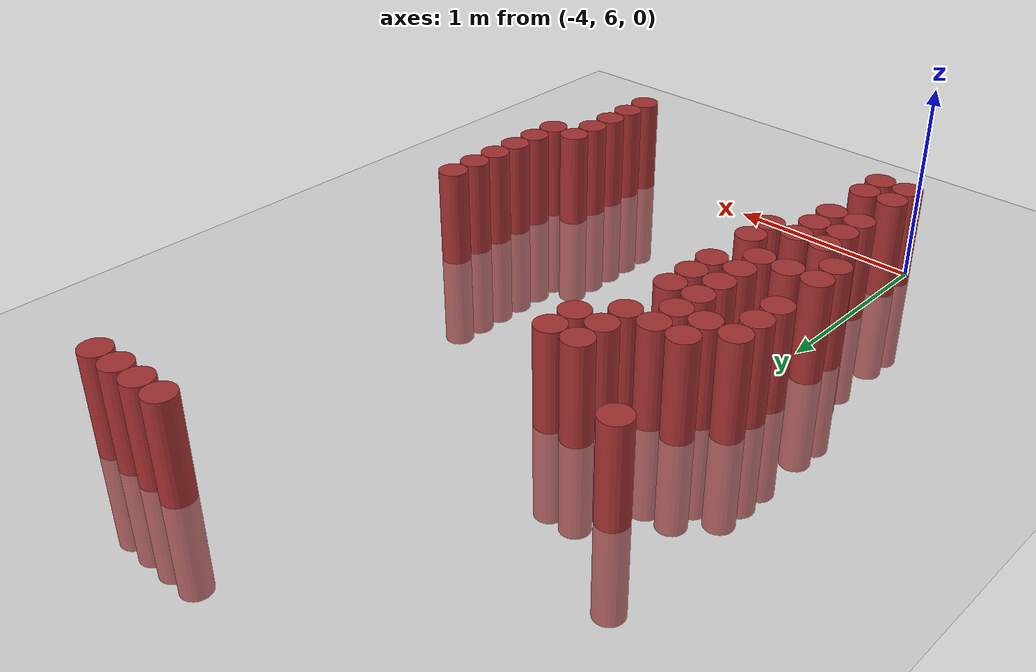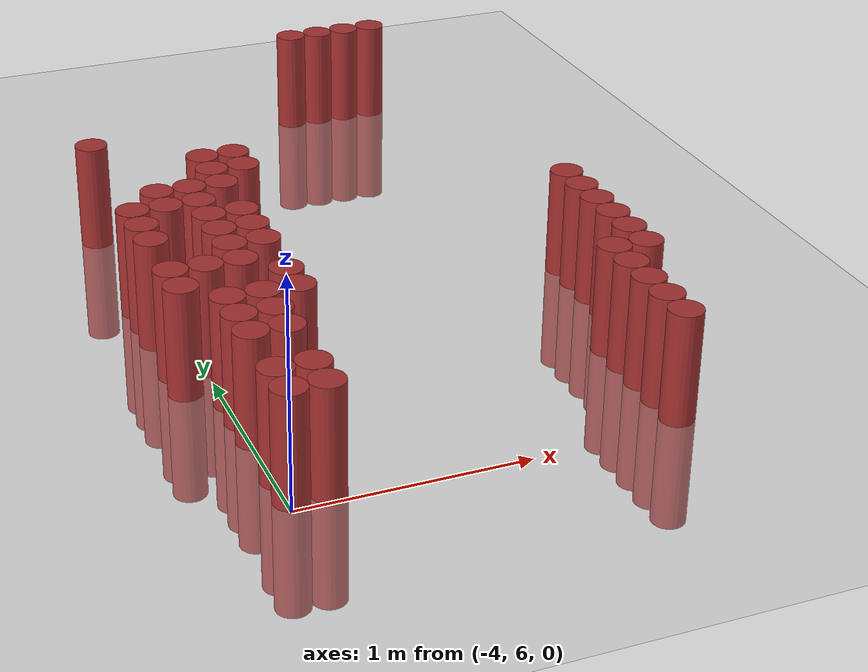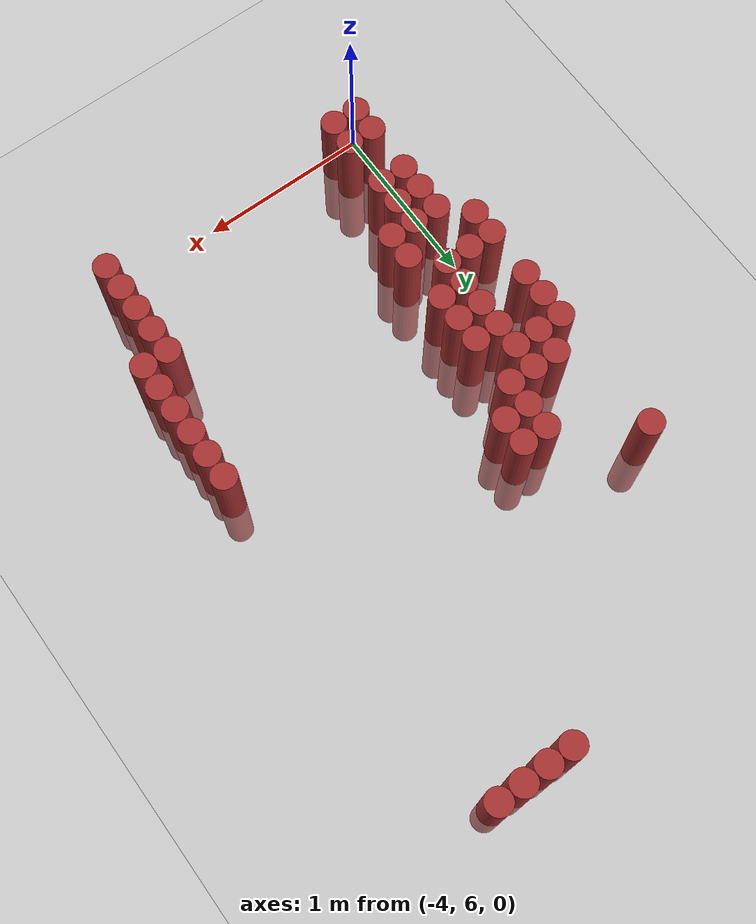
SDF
<sdf version="1.6">
 <world name="default">
  <model name="ground_plane">
   <static>1</static>
   <link name="link">
    <collision name="collision">
     <geometry><plane><normal>0 0 1</normal><size>100 100</size></plane></geometry>
     <surface><friction><ode><mu>100</mu><mu2>50</mu2></ode></friction></surface>
    </collision>
    <visual name="visual">
     <cast_shadows>0</cast_shadows>
     <geometry><plane><normal>0 0 1</normal><size>100 100</size></plane></geometry>
     <material>
      <script><uri>file://media/materials/scripts/gazebo.material</uri><name>Gazebo/Grey</name></script>
     </material>
    </visual>
   </link>
  </model>
  <model name="unit_cylinder_328">
   <static>1</static>
   <pose>-4.125000 6.975000 0.000000 0.000000 0.000000 0.000000</pose>
   <link name="link">
    <inertial>
     <mass>1</mass>
     <inertia><ixx>0.145833</ixx><ixy>0</ixy><ixz>0</ixz><iyy>0.145833</iyy><iyz>0</iyz><izz>0.125</izz></inertia>
    </inertial>
    <collision name="collision">
     <geometry><cylinder><radius>0.075000</radius><length>1</length></cylinder></geometry>
    </collision>
    <visual name="visual">
     <geometry><cylinder><radius>0.075000</radius><length>1</length></cylinder></geometry>
     <material>
      <ambient>0.648000 0.192000 0.192000 1</ambient>
      <diffuse>0.648000 0.192000 0.192000 1</diffuse>
     </material>
     <material>
      <script><name>Gazebo/Grey</name><uri>file://media/materials/scripts/gazebo.material</uri></script>
     </material>
    </visual>
   </link>
  </model>
  <model name="unit_cylinder_329">
   <static>1</static>
   <pose>-4.125000 7.125000 0.000000 0.000000 0.000000 0.000000</pose>
   <link name="link">
    <inertial>
     <mass>1</mass>
     <inertia><ixx>0.145833</ixx><ixy>0</ixy><ixz>0</ixz><iyy>0.145833</iyy><iyz>0</iyz><izz>0.125</izz></inertia>
    </inertial>
    <collision name="collision">
     <geometry><cylinder><radius>0.075000</radius><length>1</length></cylinder></geometry>
    </collision>
    <visual name="visual">
     <geometry><cylinder><radius>0.075000</radius><length>1</length></cylinder></geometry>
     <material>
      <ambient>0.648000 0.192000 0.192000 1</ambient>
      <diffuse>0.648000 0.192000 0.192000 1</diffuse>
     </material>
     <material>
      <script><name>Gazebo/Grey</name><uri>file://media/materials/scripts/gazebo.material</uri></script>
     </material>
    </visual>
   </link>
  </model>
  <model name="unit_cylinder_330">
   <static>1</static>
   <pose>-4.125000 7.425000 0.000000 0.000000 0.000000 0.000000</pose>
   <link name="link">
    <inertial>
     <mass>1</mass>
     <inertia><ixx>0.145833</ixx><ixy>0</ixy><ixz>0</ixz><iyy>0.145833</iyy><iyz>0</iyz><izz>0.125</izz></inertia>
    </inertial>
    <collision name="collision">
     <geometry><cylinder><radius>0.075000</radius><length>1</length></cylinder></geometry>
    </collision>
    <visual name="visual">
     <geometry><cylinder><radius>0.075000</radius><length>1</length></cylinder></geometry>
     <material>
      <ambient>0.648000 0.192000 0.192000 1</ambient>
      <diffuse>0.648000 0.192000 0.192000 1</diffuse>
     </material>
     <material>
      <script><name>Gazebo/Grey</name><uri>file://media/materials/scripts/gazebo.material</uri></script>
     </material>
    </visual>
   </link>
  </model>
  <model name="unit_cylinder_331">
   <static>1</static>
   <pose>-4.125000 7.575000 0.000000 0.000000 0.000000 0.000000</pose>
   <link name="link">
    <inertial>
     <mass>1</mass>
     <inertia><ixx>0.145833</ixx><ixy>0</ixy><ixz>0</ixz><iyy>0.145833</iyy><iyz>0</iyz><izz>0.125</izz></inertia>
    </inertial>
    <collision name="collision">
     <geometry><cylinder><radius>0.075000</radius><length>1</length></cylinder></geometry>
    </collision>
    <visual name="visual">
     <geometry><cylinder><radius>0.075000</radius><length>1</length></cylinder></geometry>
     <material>
      <ambient>0.648000 0.192000 0.192000 1</ambient>
      <diffuse>0.648000 0.192000 0.192000 1</diffuse>
     </material>
     <material>
      <script><name>Gazebo/Grey</name><uri>file://media/materials/scripts/gazebo.material</uri></script>
     </material>
    </visual>
   </link>
  </model>
  <model name="unit_cylinder_332">
   <static>1</static>
   <pose>-4.125000 7.725000 0.000000 0.000000 0.000000 0.000000</pose>
   <link name="link">
    <inertial>
     <mass>1</mass>
     <inertia><ixx>0.145833</ixx><ixy>0</ixy><ixz>0</ixz><iyy>0.145833</iyy><iyz>0</iyz><izz>0.125</izz></inertia>
    </inertial>
    <collision name="collision">
     <geometry><cylinder><radius>0.075000</radius><length>1</length></cylinder></geometry>
    </collision>
    <visual name="visual">
     <geometry><cylinder><radius>0.075000</radius><length>1</length></cylinder></geometry>
     <material>
      <ambient>0.648000 0.192000 0.192000 1</ambient>
      <diffuse>0.648000 0.192000 0.192000 1</diffuse>
     </material>
     <material>
      <script><name>Gazebo/Grey</name><uri>file://media/materials/scripts/gazebo.material</uri></script>
     </material>
    </visual>
   </link>
  </model>
  <model name="unit_cylinder_333">
   <static>1</static>
   <pose>-4.125000 8.475000 0.000000 0.000000 0.000000 0.000000</pose>
   <link name="link">
    <inertial>
     <mass>1</mass>
     <inertia><ixx>0.145833</ixx><ixy>0</ixy><ixz>0</ixz><iyy>0.145833</iyy><iyz>0</iyz><izz>0.125</izz></inertia>
    </inertial>
    <collision name="collision">
     <geometry><cylinder><radius>0.075000</radius><length>1</length></cylinder></geometry>
    </collision>
    <visual name="visual">
     <geometry><cylinder><radius>0.075000</radius><length>1</length></cylinder></geometry>
     <material>
      <ambient>0.648000 0.192000 0.192000 1</ambient>
      <diffuse>0.648000 0.192000 0.192000 1</diffuse>
     </material>
     <material>
      <script><name>Gazebo/Grey</name><uri>file://media/materials/scripts/gazebo.material</uri></script>
     </material>
    </visual>
   </link>
  </model>
  <model name="unit_cylinder_334">
   <static>1</static>
   <pose>-3.975000 6.075000 0.000000 0.000000 0.000000 0.000000</pose>
   <link name="link">
    <inertial>
     <mass>1</mass>
     <inertia><ixx>0.145833</ixx><ixy>0</ixy><ixz>0</ixz><iyy>0.145833</iyy><iyz>0</iyz><izz>0.125</izz></inertia>
    </inertial>
    <collision name="collision">
     <geometry><cylinder><radius>0.075000</radius><length>1</length></cylinder></geometry>
    </collision>
    <visual name="visual">
     <geometry><cylinder><radius>0.075000</radius><length>1</length></cylinder></geometry>
     <material>
      <ambient>0.648000 0.192000 0.192000 1</ambient>
      <diffuse>0.648000 0.192000 0.192000 1</diffuse>
     </material>
     <material>
      <script><name>Gazebo/Grey</name><uri>file://media/materials/scripts/gazebo.material</uri></script>
     </material>
    </visual>
   </link>
  </model>
  <model name="unit_cylinder_335">
   <static>1</static>
   <pose>-3.975000 6.225000 0.000000 0.000000 0.000000 0.000000</pose>
   <link name="link">
    <inertial>
     <mass>1</mass>
     <inertia><ixx>0.145833</ixx><ixy>0</ixy><ixz>0</ixz><iyy>0.145833</iyy><iyz>0</iyz><izz>0.125</izz></inertia>
    </inertial>
    <collision name="collision">
     <geometry><cylinder><radius>0.075000</radius><length>1</length></cylinder></geometry>
    </collision>
    <visual name="visual">
     <geometry><cylinder><radius>0.075000</radius><length>1</length></cylinder></geometry>
     <material>
      <ambient>0.648000 0.192000 0.192000 1</ambient>
      <diffuse>0.648000 0.192000 0.192000 1</diffuse>
     </material>
     <material>
      <script><name>Gazebo/Grey</name><uri>file://media/materials/scripts/gazebo.material</uri></script>
     </material>
    </visual>
   </link>
  </model>
  <model name="unit_cylinder_336">
   <static>1</static>
   <pose>-3.975000 6.525000 0.000000 0.000000 0.000000 0.000000</pose>
   <link name="link">
    <inertial>
     <mass>1</mass>
     <inertia><ixx>0.145833</ixx><ixy>0</ixy><ixz>0</ixz><iyy>0.145833</iyy><iyz>0</iyz><izz>0.125</izz></inertia>
    </inertial>
    <collision name="collision">
     <geometry><cylinder><radius>0.075000</radius><length>1</length></cylinder></geometry>
    </collision>
    <visual name="visual">
     <geometry><cylinder><radius>0.075000</radius><length>1</length></cylinder></geometry>
     <material>
      <ambient>0.648000 0.192000 0.192000 1</ambient>
      <diffuse>0.648000 0.192000 0.192000 1</diffuse>
     </material>
     <material>
      <script><name>Gazebo/Grey</name><uri>file://media/materials/scripts/gazebo.material</uri></script>
     </material>
    </visual>
   </link>
  </model>
  <model name="unit_cylinder_337">
   <static>1</static>
   <pose>-3.975000 6.675000 0.000000 0.000000 0.000000 0.000000</pose>
   <link name="link">
    <inertial>
     <mass>1</mass>
     <inertia><ixx>0.145833</ixx><ixy>0</ixy><ixz>0</ixz><iyy>0.145833</iyy><iyz>0</iyz><izz>0.125</izz></inertia>
    </inertial>
    <collision name="collision">
     <geometry><cylinder><radius>0.075000</radius><length>1</length></cylinder></geometry>
    </collision>
    <visual name="visual">
     <geometry><cylinder><radius>0.075000</radius><length>1</length></cylinder></geometry>
     <material>
      <ambient>0.648000 0.192000 0.192000 1</ambient>
      <diffuse>0.648000 0.192000 0.192000 1</diffuse>
     </material>
     <material>
      <script><name>Gazebo/Grey</name><uri>file://media/materials/scripts/gazebo.material</uri></script>
     </material>
    </visual>
   </link>
  </model>
  <model name="unit_cylinder_338">
   <static>1</static>
   <pose>-3.975000 6.825000 0.000000 0.000000 0.000000 0.000000</pose>
   <link name="link">
    <inertial>
     <mass>1</mass>
     <inertia><ixx>0.145833</ixx><ixy>0</ixy><ixz>0</ixz><iyy>0.145833</iyy><iyz>0</iyz><izz>0.125</izz></inertia>
    </inertial>
    <collision name="collision">
     <geometry><cylinder><radius>0.075000</radius><length>1</length></cylinder></geometry>
    </collision>
    <visual name="visual">
     <geometry><cylinder><radius>0.075000</radius><length>1</length></cylinder></geometry>
     <material>
      <ambient>0.648000 0.192000 0.192000 1</ambient>
      <diffuse>0.648000 0.192000 0.192000 1</diffuse>
     </material>
     <material>
      <script><name>Gazebo/Grey</name><uri>file://media/materials/scripts/gazebo.material</uri></script>
     </material>
    </visual>
   </link>
  </model>
  <model name="unit_cylinder_339">
   <static>1</static>
   <pose>-3.975000 7.125000 0.000000 0.000000 0.000000 0.000000</pose>
   <link name="link">
    <inertial>
     <mass>1</mass>
     <inertia><ixx>0.145833</ixx><ixy>0</ixy><ixz>0</ixz><iyy>0.145833</iyy><iyz>0</iyz><izz>0.125</izz></inertia>
    </inertial>
    <collision name="collision">
     <geometry><cylinder><radius>0.075000</radius><length>1</length></cylinder></geometry>
    </collision>
    <visual name="visual">
     <geometry><cylinder><radius>0.075000</radius><length>1</length></cylinder></geometry>
     <material>
      <ambient>0.648000 0.192000 0.192000 1</ambient>
      <diffuse>0.648000 0.192000 0.192000 1</diffuse>
     </material>
     <material>
      <script><name>Gazebo/Grey</name><uri>file://media/materials/scripts/gazebo.material</uri></script>
     </material>
    </visual>
   </link>
  </model>
  <model name="unit_cylinder_340">
   <static>1</static>
   <pose>-3.975000 7.725000 0.000000 0.000000 0.000000 0.000000</pose>
   <link name="link">
    <inertial>
     <mass>1</mass>
     <inertia><ixx>0.145833</ixx><ixy>0</ixy><ixz>0</ixz><iyy>0.145833</iyy><iyz>0</iyz><izz>0.125</izz></inertia>
    </inertial>
    <collision name="collision">
     <geometry><cylinder><radius>0.075000</radius><length>1</length></cylinder></geometry>
    </collision>
    <visual name="visual">
     <geometry><cylinder><radius>0.075000</radius><length>1</length></cylinder></geometry>
     <material>
      <ambient>0.648000 0.192000 0.192000 1</ambient>
      <diffuse>0.648000 0.192000 0.192000 1</diffuse>
     </material>
     <material>
      <script><name>Gazebo/Grey</name><uri>file://media/materials/scripts/gazebo.material</uri></script>
     </material>
    </visual>
   </link>
  </model>
  <model name="unit_cylinder_341">
   <static>1</static>
   <pose>-3.975000 7.875000 0.000000 0.000000 0.000000 0.000000</pose>
   <link name="link">
    <inertial>
     <mass>1</mass>
     <inertia><ixx>0.145833</ixx><ixy>0</ixy><ixz>0</ixz><iyy>0.145833</iyy><iyz>0</iyz><izz>0.125</izz></inertia>
    </inertial>
    <collision name="collision">
     <geometry><cylinder><radius>0.075000</radius><length>1</length></cylinder></geometry>
    </collision>
    <visual name="visual">
     <geometry><cylinder><radius>0.075000</radius><length>1</length></cylinder></geometry>
     <material>
      <ambient>0.648000 0.192000 0.192000 1</ambient>
      <diffuse>0.648000 0.192000 0.192000 1</diffuse>
     </material>
     <material>
      <script><name>Gazebo/Grey</name><uri>file://media/materials/scripts/gazebo.material</uri></script>
     </material>
    </visual>
   </link>
  </model>
  <model name="unit_cylinder_342">
   <static>1</static>
   <pose>-3.825000 6.075000 0.000000 0.000000 0.000000 0.000000</pose>
   <link name="link">
    <inertial>
     <mass>1</mass>
     <inertia><ixx>0.145833</ixx><ixy>0</ixy><ixz>0</ixz><iyy>0.145833</iyy><iyz>0</iyz><izz>0.125</izz></inertia>
    </inertial>
    <collision name="collision">
     <geometry><cylinder><radius>0.075000</radius><length>1</length></cylinder></geometry>
    </collision>
    <visual name="visual">
     <geometry><cylinder><radius>0.075000</radius><length>1</length></cylinder></geometry>
     <material>
      <ambient>0.648000 0.192000 0.192000 1</ambient>
      <diffuse>0.648000 0.192000 0.192000 1</diffuse>
     </material>
     <material>
      <script><name>Gazebo/Grey</name><uri>file://media/materials/scripts/gazebo.material</uri></script>
     </material>
    </visual>
   </link>
  </model>
  <model name="unit_cylinder_343">
   <static>1</static>
   <pose>-3.825000 6.225000 0.000000 0.000000 0.000000 0.000000</pose>
   <link name="link">
    <inertial>
     <mass>1</mass>
     <inertia><ixx>0.145833</ixx><ixy>0</ixy><ixz>0</ixz><iyy>0.145833</iyy><iyz>0</iyz><izz>0.125</izz></inertia>
    </inertial>
    <collision name="collision">
     <geometry><cylinder><radius>0.075000</radius><length>1</length></cylinder></geometry>
    </collision>
    <visual name="visual">
     <geometry><cylinder><radius>0.075000</radius><length>1</length></cylinder></geometry>
     <material>
      <ambient>0.648000 0.192000 0.192000 1</ambient>
      <diffuse>0.648000 0.192000 0.192000 1</diffuse>
     </material>
     <material>
      <script><name>Gazebo/Grey</name><uri>file://media/materials/scripts/gazebo.material</uri></script>
     </material>
    </visual>
   </link>
  </model>
  <model name="unit_cylinder_344">
   <static>1</static>
   <pose>-3.825000 6.525000 0.000000 0.000000 0.000000 0.000000</pose>
   <link name="link">
    <inertial>
     <mass>1</mass>
     <inertia><ixx>0.145833</ixx><ixy>0</ixy><ixz>0</ixz><iyy>0.145833</iyy><iyz>0</iyz><izz>0.125</izz></inertia>
    </inertial>
    <collision name="collision">
     <geometry><cylinder><radius>0.075000</radius><length>1</length></cylinder></geometry>
    </collision>
    <visual name="visual">
     <geometry><cylinder><radius>0.075000</radius><length>1</length></cylinder></geometry>
     <material>
      <ambient>0.648000 0.192000 0.192000 1</ambient>
      <diffuse>0.648000 0.192000 0.192000 1</diffuse>
     </material>
     <material>
      <script><name>Gazebo/Grey</name><uri>file://media/materials/scripts/gazebo.material</uri></script>
     </material>
    </visual>
   </link>
  </model>
  <model name="unit_cylinder_345">
   <static>1</static>
   <pose>-3.825000 6.675000 0.000000 0.000000 0.000000 0.000000</pose>
   <link name="link">
    <inertial>
     <mass>1</mass>
     <inertia><ixx>0.145833</ixx><ixy>0</ixy><ixz>0</ixz><iyy>0.145833</iyy><iyz>0</iyz><izz>0.125</izz></inertia>
    </inertial>
    <collision name="collision">
     <geometry><cylinder><radius>0.075000</radius><length>1</length></cylinder></geometry>
    </collision>
    <visual name="visual">
     <geometry><cylinder><radius>0.075000</radius><length>1</length></cylinder></geometry>
     <material>
      <ambient>0.648000 0.192000 0.192000 1</ambient>
      <diffuse>0.648000 0.192000 0.192000 1</diffuse>
     </material>
     <material>
      <script><name>Gazebo/Grey</name><uri>file://media/materials/scripts/gazebo.material</uri></script>
     </material>
    </visual>
   </link>
  </model>
  <model name="unit_cylinder_346">
   <static>1</static>
   <pose>-3.825000 6.825000 0.000000 0.000000 0.000000 0.000000</pose>
   <link name="link">
    <inertial>
     <mass>1</mass>
     <inertia><ixx>0.145833</ixx><ixy>0</ixy><ixz>0</ixz><iyy>0.145833</iyy><iyz>0</iyz><izz>0.125</izz></inertia>
    </inertial>
    <collision name="collision">
     <geometry><cylinder><radius>0.075000</radius><length>1</length></cylinder></geometry>
    </collision>
    <visual name="visual">
     <geometry><cylinder><radius>0.075000</radius><length>1</length></cylinder></geometry>
     <material>
      <ambient>0.648000 0.192000 0.192000 1</ambient>
      <diffuse>0.648000 0.192000 0.192000 1</diffuse>
     </material>
     <material>
      <script><name>Gazebo/Grey</name><uri>file://media/materials/scripts/gazebo.material</uri></script>
     </material>
    </visual>
   </link>
  </model>
  <model name="unit_cylinder_347">
   <static>1</static>
   <pose>-3.825000 7.125000 0.000000 0.000000 0.000000 0.000000</pose>
   <link name="link">
    <inertial>
     <mass>1</mass>
     <inertia><ixx>0.145833</ixx><ixy>0</ixy><ixz>0</ixz><iyy>0.145833</iyy><iyz>0</iyz><izz>0.125</izz></inertia>
    </inertial>
    <collision name="collision">
     <geometry><cylinder><radius>0.075000</radius><length>1</length></cylinder></geometry>
    </collision>
    <visual name="visual">
     <geometry><cylinder><radius>0.075000</radius><length>1</length></cylinder></geometry>
     <material>
      <ambient>0.648000 0.192000 0.192000 1</ambient>
      <diffuse>0.648000 0.192000 0.192000 1</diffuse>
     </material>
     <material>
      <script><name>Gazebo/Grey</name><uri>file://media/materials/scripts/gazebo.material</uri></script>
     </material>
    </visual>
   </link>
  </model>
  <model name="unit_cylinder_348">
   <static>1</static>
   <pose>-3.825000 7.275000 0.000000 0.000000 0.000000 0.000000</pose>
   <link name="link">
    <inertial>
     <mass>1</mass>
     <inertia><ixx>0.145833</ixx><ixy>0</ixy><ixz>0</ixz><iyy>0.145833</iyy><iyz>0</iyz><izz>0.125</izz></inertia>
    </inertial>
    <collision name="collision">
     <geometry><cylinder><radius>0.075000</radius><length>1</length></cylinder></geometry>
    </collision>
    <visual name="visual">
     <geometry><cylinder><radius>0.075000</radius><length>1</length></cylinder></geometry>
     <material>
      <ambient>0.648000 0.192000 0.192000 1</ambient>
      <diffuse>0.648000 0.192000 0.192000 1</diffuse>
     </material>
     <material>
      <script><name>Gazebo/Grey</name><uri>file://media/materials/scripts/gazebo.material</uri></script>
     </material>
    </visual>
   </link>
  </model>
  <model name="unit_cylinder_349">
   <static>1</static>
   <pose>-3.825000 7.425000 0.000000 0.000000 0.000000 0.000000</pose>
   <link name="link">
    <inertial>
     <mass>1</mass>
     <inertia><ixx>0.145833</ixx><ixy>0</ixy><ixz>0</ixz><iyy>0.145833</iyy><iyz>0</iyz><izz>0.125</izz></inertia>
    </inertial>
    <collision name="collision">
     <geometry><cylinder><radius>0.075000</radius><length>1</length></cylinder></geometry>
    </collision>
    <visual name="visual">
     <geometry><cylinder><radius>0.075000</radius><length>1</length></cylinder></geometry>
     <material>
      <ambient>0.648000 0.192000 0.192000 1</ambient>
      <diffuse>0.648000 0.192000 0.192000 1</diffuse>
     </material>
     <material>
      <script><name>Gazebo/Grey</name><uri>file://media/materials/scripts/gazebo.material</uri></script>
     </material>
    </visual>
   </link>
  </model>
  <model name="unit_cylinder_350">
   <static>1</static>
   <pose>-3.825000 7.575000 0.000000 0.000000 0.000000 0.000000</pose>
   <link name="link">
    <inertial>
     <mass>1</mass>
     <inertia><ixx>0.145833</ixx><ixy>0</ixy><ixz>0</ixz><iyy>0.145833</iyy><iyz>0</iyz><izz>0.125</izz></inertia>
    </inertial>
    <collision name="collision">
     <geometry><cylinder><radius>0.075000</radius><length>1</length></cylinder></geometry>
    </collision>
    <visual name="visual">
     <geometry><cylinder><radius>0.075000</radius><length>1</length></cylinder></geometry>
     <material>
      <ambient>0.648000 0.192000 0.192000 1</ambient>
      <diffuse>0.648000 0.192000 0.192000 1</diffuse>
     </material>
     <material>
      <script><name>Gazebo/Grey</name><uri>file://media/materials/scripts/gazebo.material</uri></script>
     </material>
    </visual>
   </link>
  </model>
  <model name="unit_cylinder_351">
   <static>1</static>
   <pose>-3.825000 7.725000 0.000000 0.000000 0.000000 0.000000</pose>
   <link name="link">
    <inertial>
     <mass>1</mass>
     <inertia><ixx>0.145833</ixx><ixy>0</ixy><ixz>0</ixz><iyy>0.145833</iyy><iyz>0</iyz><izz>0.125</izz></inertia>
    </inertial>
    <collision name="collision">
     <geometry><cylinder><radius>0.075000</radius><length>1</length></cylinder></geometry>
    </collision>
    <visual name="visual">
     <geometry><cylinder><radius>0.075000</radius><length>1</length></cylinder></geometry>
     <material>
      <ambient>0.648000 0.192000 0.192000 1</ambient>
      <diffuse>0.648000 0.192000 0.192000 1</diffuse>
     </material>
     <material>
      <script><name>Gazebo/Grey</name><uri>file://media/materials/scripts/gazebo.material</uri></script>
     </material>
    </visual>
   </link>
  </model>
  <model name="unit_cylinder_352">
   <static>1</static>
   <pose>-3.825000 7.875000 0.000000 0.000000 0.000000 0.000000</pose>
   <link name="link">
    <inertial>
     <mass>1</mass>
     <inertia><ixx>0.145833</ixx><ixy>0</ixy><ixz>0</ixz><iyy>0.145833</iyy><iyz>0</iyz><izz>0.125</izz></inertia>
    </inertial>
    <collision name="collision">
     <geometry><cylinder><radius>0.075000</radius><length>1</length></cylinder></geometry>
    </collision>
    <visual name="visual">
     <geometry><cylinder><radius>0.075000</radius><length>1</length></cylinder></geometry>
     <material>
      <ambient>0.648000 0.192000 0.192000 1</ambient>
      <diffuse>0.648000 0.192000 0.192000 1</diffuse>
     </material>
     <material>
      <script><name>Gazebo/Grey</name><uri>file://media/materials/scripts/gazebo.material</uri></script>
     </material>
    </visual>
   </link>
  </model>
  <model name="unit_cylinder_353">
   <static>1</static>
   <pose>-3.675000 6.825000 0.000000 0.000000 0.000000 0.000000</pose>
   <link name="link">
    <inertial>
     <mass>1</mass>
     <inertia><ixx>0.145833</ixx><ixy>0</ixy><ixz>0</ixz><iyy>0.145833</iyy><iyz>0</iyz><izz>0.125</izz></inertia>
    </inertial>
    <collision name="collision">
     <geometry><cylinder><radius>0.075000</radius><length>1</length></cylinder></geometry>
    </collision>
    <visual name="visual">
     <geometry><cylinder><radius>0.075000</radius><length>1</length></cylinder></geometry>
     <material>
      <ambient>0.648000 0.192000 0.192000 1</ambient>
      <diffuse>0.648000 0.192000 0.192000 1</diffuse>
     </material>
     <material>
      <script><name>Gazebo/Grey</name><uri>file://media/materials/scripts/gazebo.material</uri></script>
     </material>
    </visual>
   </link>
  </model>
  <model name="unit_cylinder_354">
   <static>1</static>
   <pose>-3.675000 6.975000 0.000000 0.000000 0.000000 0.000000</pose>
   <link name="link">
    <inertial>
     <mass>1</mass>
     <inertia><ixx>0.145833</ixx><ixy>0</ixy><ixz>0</ixz><iyy>0.145833</iyy><iyz>0</iyz><izz>0.125</izz></inertia>
    </inertial>
    <collision name="collision">
     <geometry><cylinder><radius>0.075000</radius><length>1</length></cylinder></geometry>
    </collision>
    <visual name="visual">
     <geometry><cylinder><radius>0.075000</radius><length>1</length></cylinder></geometry>
     <material>
      <ambient>0.648000 0.192000 0.192000 1</ambient>
      <diffuse>0.648000 0.192000 0.192000 1</diffuse>
     </material>
     <material>
      <script><name>Gazebo/Grey</name><uri>file://media/materials/scripts/gazebo.material</uri></script>
     </material>
    </visual>
   </link>
  </model>
  <model name="unit_cylinder_355">
   <static>1</static>
   <pose>-3.675000 7.275000 0.000000 0.000000 0.000000 0.000000</pose>
   <link name="link">
    <inertial>
     <mass>1</mass>
     <inertia><ixx>0.145833</ixx><ixy>0</ixy><ixz>0</ixz><iyy>0.145833</iyy><iyz>0</iyz><izz>0.125</izz></inertia>
    </inertial>
    <collision name="collision">
     <geometry><cylinder><radius>0.075000</radius><length>1</length></cylinder></geometry>
    </collision>
    <visual name="visual">
     <geometry><cylinder><radius>0.075000</radius><length>1</length></cylinder></geometry>
     <material>
      <ambient>0.648000 0.192000 0.192000 1</ambient>
      <diffuse>0.648000 0.192000 0.192000 1</diffuse>
     </material>
     <material>
      <script><name>Gazebo/Grey</name><uri>file://media/materials/scripts/gazebo.material</uri></script>
     </material>
    </visual>
   </link>
  </model>
  <model name="unit_cylinder_356">
   <static>1</static>
   <pose>-3.675000 7.425000 0.000000 0.000000 0.000000 0.000000</pose>
   <link name="link">
    <inertial>
     <mass>1</mass>
     <inertia><ixx>0.145833</ixx><ixy>0</ixy><ixz>0</ixz><iyy>0.145833</iyy><iyz>0</iyz><izz>0.125</izz></inertia>
    </inertial>
    <collision name="collision">
     <geometry><cylinder><radius>0.075000</radius><length>1</length></cylinder></geometry>
    </collision>
    <visual name="visual">
     <geometry><cylinder><radius>0.075000</radius><length>1</length></cylinder></geometry>
     <material>
      <ambient>0.648000 0.192000 0.192000 1</ambient>
      <diffuse>0.648000 0.192000 0.192000 1</diffuse>
     </material>
     <material>
      <script><name>Gazebo/Grey</name><uri>file://media/materials/scripts/gazebo.material</uri></script>
     </material>
    </visual>
   </link>
  </model>
  <model name="unit_cylinder_357">
   <static>1</static>
   <pose>-3.675000 7.575000 0.000000 0.000000 0.000000 0.000000</pose>
   <link name="link">
    <inertial>
     <mass>1</mass>
     <inertia><ixx>0.145833</ixx><ixy>0</ixy><ixz>0</ixz><iyy>0.145833</iyy><iyz>0</iyz><izz>0.125</izz></inertia>
    </inertial>
    <collision name="collision">
     <geometry><cylinder><radius>0.075000</radius><length>1</length></cylinder></geometry>
    </collision>
    <visual name="visual">
     <geometry><cylinder><radius>0.075000</radius><length>1</length></cylinder></geometry>
     <material>
      <ambient>0.648000 0.192000 0.192000 1</ambient>
      <diffuse>0.648000 0.192000 0.192000 1</diffuse>
     </material>
     <material>
      <script><name>Gazebo/Grey</name><uri>file://media/materials/scripts/gazebo.material</uri></script>
     </material>
    </visual>
   </link>
  </model>
  <model name="unit_cylinder_358">
   <static>1</static>
   <pose>-3.675000 7.875000 0.000000 0.000000 0.000000 0.000000</pose>
   <link name="link">
    <inertial>
     <mass>1</mass>
     <inertia><ixx>0.145833</ixx><ixy>0</ixy><ixz>0</ixz><iyy>0.145833</iyy><iyz>0</iyz><izz>0.125</izz></inertia>
    </inertial>
    <collision name="collision">
     <geometry><cylinder><radius>0.075000</radius><length>1</length></cylinder></geometry>
    </collision>
    <visual name="visual">
     <geometry><cylinder><radius>0.075000</radius><length>1</length></cylinder></geometry>
     <material>
      <ambient>0.648000 0.192000 0.192000 1</ambient>
      <diffuse>0.648000 0.192000 0.192000 1</diffuse>
     </material>
     <material>
      <script><name>Gazebo/Grey</name><uri>file://media/materials/scripts/gazebo.material</uri></script>
     </material>
    </visual>
   </link>
  </model>
  <model name="unit_cylinder_359">
   <static>1</static>
   <pose>-3.675000 8.025000 0.000000 0.000000 0.000000 0.000000</pose>
   <link name="link">
    <inertial>
     <mass>1</mass>
     <inertia><ixx>0.145833</ixx><ixy>0</ixy><ixz>0</ixz><iyy>0.145833</iyy><iyz>0</iyz><izz>0.125</izz></inertia>
    </inertial>
    <collision name="collision">
     <geometry><cylinder><radius>0.075000</radius><length>1</length></cylinder></geometry>
    </collision>
    <visual name="visual">
     <geometry><cylinder><radius>0.075000</radius><length>1</length></cylinder></geometry>
     <material>
      <ambient>0.648000 0.192000 0.192000 1</ambient>
      <diffuse>0.648000 0.192000 0.192000 1</diffuse>
     </material>
     <material>
      <script><name>Gazebo/Grey</name><uri>file://media/materials/scripts/gazebo.material</uri></script>
     </material>
    </visual>
   </link>
  </model>
  <model name="unit_cylinder_360">
   <static>1</static>
   <pose>-3.675000 8.175000 0.000000 0.000000 0.000000 0.000000</pose>
   <link name="link">
    <inertial>
     <mass>1</mass>
     <inertia><ixx>0.145833</ixx><ixy>0</ixy><ixz>0</ixz><iyy>0.145833</iyy><iyz>0</iyz><izz>0.125</izz></inertia>
    </inertial>
    <collision name="collision">
     <geometry><cylinder><radius>0.075000</radius><length>1</length></cylinder></geometry>
    </collision>
    <visual name="visual">
     <geometry><cylinder><radius>0.075000</radius><length>1</length></cylinder></geometry>
     <material>
      <ambient>0.648000 0.192000 0.192000 1</ambient>
      <diffuse>0.648000 0.192000 0.192000 1</diffuse>
     </material>
     <material>
      <script><name>Gazebo/Grey</name><uri>file://media/materials/scripts/gazebo.material</uri></script>
     </material>
    </visual>
   </link>
  </model>
  <model name="unit_cylinder_361">
   <static>1</static>
   <pose>-3.525000 8.025000 0.000000 0.000000 0.000000 0.000000</pose>
   <link name="link">
    <inertial>
     <mass>1</mass>
     <inertia><ixx>0.145833</ixx><ixy>0</ixy><ixz>0</ixz><iyy>0.145833</iyy><iyz>0</iyz><izz>0.125</izz></inertia>
    </inertial>
    <collision name="collision">
     <geometry><cylinder><radius>0.075000</radius><length>1</length></cylinder></geometry>
    </collision>
    <visual name="visual">
     <geometry><cylinder><radius>0.075000</radius><length>1</length></cylinder></geometry>
     <material>
      <ambient>0.648000 0.192000 0.192000 1</ambient>
      <diffuse>0.648000 0.192000 0.192000 1</diffuse>
     </material>
     <material>
      <script><name>Gazebo/Grey</name><uri>file://media/materials/scripts/gazebo.material</uri></script>
     </material>
    </visual>
   </link>
  </model>
  <model name="unit_cylinder_362">
   <static>1</static>
   <pose>-3.525000 8.175000 0.000000 0.000000 0.000000 0.000000</pose>
   <link name="link">
    <inertial>
     <mass>1</mass>
     <inertia><ixx>0.145833</ixx><ixy>0</ixy><ixz>0</ixz><iyy>0.145833</iyy><iyz>0</iyz><izz>0.125</izz></inertia>
    </inertial>
    <collision name="collision">
     <geometry><cylinder><radius>0.075000</radius><length>1</length></cylinder></geometry>
    </collision>
    <visual name="visual">
     <geometry><cylinder><radius>0.075000</radius><length>1</length></cylinder></geometry>
     <material>
      <ambient>0.648000 0.192000 0.192000 1</ambient>
      <diffuse>0.648000 0.192000 0.192000 1</diffuse>
     </material>
     <material>
      <script><name>Gazebo/Grey</name><uri>file://media/materials/scripts/gazebo.material</uri></script>
     </material>
    </visual>
   </link>
  </model>
  <model name="unit_cylinder_363">
   <static>1</static>
   <pose>-2.775000 9.525000 0.000000 0.000000 0.000000 0.000000</pose>
   <link name="link">
    <inertial>
     <mass>1</mass>
     <inertia><ixx>0.145833</ixx><ixy>0</ixy><ixz>0</ixz><iyy>0.145833</iyy><iyz>0</iyz><izz>0.125</izz></inertia>
    </inertial>
    <collision name="collision">
     <geometry><cylinder><radius>0.075000</radius><length>1</length></cylinder></geometry>
    </collision>
    <visual name="visual">
     <geometry><cylinder><radius>0.075000</radius><length>1</length></cylinder></geometry>
     <material>
      <ambient>0.648000 0.192000 0.192000 1</ambient>
      <diffuse>0.648000 0.192000 0.192000 1</diffuse>
     </material>
     <material>
      <script><name>Gazebo/Grey</name><uri>file://media/materials/scripts/gazebo.material</uri></script>
     </material>
    </visual>
   </link>
  </model>
  <model name="unit_cylinder_364">
   <static>1</static>
   <pose>-2.625000 9.525000 0.000000 0.000000 0.000000 0.000000</pose>
   <link name="link">
    <inertial>
     <mass>1</mass>
     <inertia><ixx>0.145833</ixx><ixy>0</ixy><ixz>0</ixz><iyy>0.145833</iyy><iyz>0</iyz><izz>0.125</izz></inertia>
    </inertial>
    <collision name="collision">
     <geometry><cylinder><radius>0.075000</radius><length>1</length></cylinder></geometry>
    </collision>
    <visual name="visual">
     <geometry><cylinder><radius>0.075000</radius><length>1</length></cylinder></geometry>
     <material>
      <ambient>0.648000 0.192000 0.192000 1</ambient>
      <diffuse>0.648000 0.192000 0.192000 1</diffuse>
     </material>
     <material>
      <script><name>Gazebo/Grey</name><uri>file://media/materials/scripts/gazebo.material</uri></script>
     </material>
    </visual>
   </link>
  </model>
  <model name="unit_cylinder_368">
   <static>1</static>
   <pose>-2.475000 9.525000 0.000000 0.000000 0.000000 0.000000</pose>
   <link name="link">
    <inertial>
     <mass>1</mass>
     <inertia><ixx>0.145833</ixx><ixy>0</ixy><ixz>0</ixz><iyy>0.145833</iyy><iyz>0</iyz><izz>0.125</izz></inertia>
    </inertial>
    <collision name="collision">
     <geometry><cylinder><radius>0.075000</radius><length>1</length></cylinder></geometry>
    </collision>
    <visual name="visual">
     <geometry><cylinder><radius>0.075000</radius><length>1</length></cylinder></geometry>
     <material>
      <ambient>0.648000 0.192000 0.192000 1</ambient>
      <diffuse>0.648000 0.192000 0.192000 1</diffuse>
     </material>
     <material>
      <script><name>Gazebo/Grey</name><uri>file://media/materials/scripts/gazebo.material</uri></script>
     </material>
    </visual>
   </link>
  </model>
  <model name="unit_cylinder_374">
   <static>1</static>
   <pose>-2.325000 6.075000 0.000000 0.000000 0.000000 0.000000</pose>
   <link name="link">
    <inertial>
     <mass>1</mass>
     <inertia><ixx>0.145833</ixx><ixy>0</ixy><ixz>0</ixz><iyy>0.145833</iyy><iyz>0</iyz><izz>0.125</izz></inertia>
    </inertial>
    <collision name="collision">
     <geometry><cylinder><radius>0.075000</radius><length>1</length></cylinder></geometry>
    </collision>
    <visual name="visual">
     <geometry><cylinder><radius>0.075000</radius><length>1</length></cylinder></geometry>
     <material>
      <ambient>0.648000 0.192000 0.192000 1</ambient>
      <diffuse>0.648000 0.192000 0.192000 1</diffuse>
     </material>
     <material>
      <script><name>Gazebo/Grey</name><uri>file://media/materials/scripts/gazebo.material</uri></script>
     </material>
    </visual>
   </link>
  </model>
  <model name="unit_cylinder_375">
   <static>1</static>
   <pose>-2.325000 6.225000 0.000000 0.000000 0.000000 0.000000</pose>
   <link name="link">
    <inertial>
     <mass>1</mass>
     <inertia><ixx>0.145833</ixx><ixy>0</ixy><ixz>0</ixz><iyy>0.145833</iyy><iyz>0</iyz><izz>0.125</izz></inertia>
    </inertial>
    <collision name="collision">
     <geometry><cylinder><radius>0.075000</radius><length>1</length></cylinder></geometry>
    </collision>
    <visual name="visual">
     <geometry><cylinder><radius>0.075000</radius><length>1</length></cylinder></geometry>
     <material>
      <ambient>0.648000 0.192000 0.192000 1</ambient>
      <diffuse>0.648000 0.192000 0.192000 1</diffuse>
     </material>
     <material>
      <script><name>Gazebo/Grey</name><uri>file://media/materials/scripts/gazebo.material</uri></script>
     </material>
    </visual>
   </link>
  </model>
  <model name="unit_cylinder_376">
   <static>1</static>
   <pose>-2.325000 6.375000 0.000000 0.000000 0.000000 0.000000</pose>
   <link name="link">
    <inertial>
     <mass>1</mass>
     <inertia><ixx>0.145833</ixx><ixy>0</ixy><ixz>0</ixz><iyy>0.145833</iyy><iyz>0</iyz><izz>0.125</izz></inertia>
    </inertial>
    <collision name="collision">
     <geometry><cylinder><radius>0.075000</radius><length>1</length></cylinder></geometry>
    </collision>
    <visual name="visual">
     <geometry><cylinder><radius>0.075000</radius><length>1</length></cylinder></geometry>
     <material>
      <ambient>0.648000 0.192000 0.192000 1</ambient>
      <diffuse>0.648000 0.192000 0.192000 1</diffuse>
     </material>
     <material>
      <script><name>Gazebo/Grey</name><uri>file://media/materials/scripts/gazebo.material</uri></script>
     </material>
    </visual>
   </link>
  </model>
  <model name="unit_cylinder_377">
   <static>1</static>
   <pose>-2.325000 6.525000 0.000000 0.000000 0.000000 0.000000</pose>
   <link name="link">
    <inertial>
     <mass>1</mass>
     <inertia><ixx>0.145833</ixx><ixy>0</ixy><ixz>0</ixz><iyy>0.145833</iyy><iyz>0</iyz><izz>0.125</izz></inertia>
    </inertial>
    <collision name="collision">
     <geometry><cylinder><radius>0.075000</radius><length>1</length></cylinder></geometry>
    </collision>
    <visual name="visual">
     <geometry><cylinder><radius>0.075000</radius><length>1</length></cylinder></geometry>
     <material>
      <ambient>0.648000 0.192000 0.192000 1</ambient>
      <diffuse>0.648000 0.192000 0.192000 1</diffuse>
     </material>
     <material>
      <script><name>Gazebo/Grey</name><uri>file://media/materials/scripts/gazebo.material</uri></script>
     </material>
    </visual>
   </link>
  </model>
  <model name="unit_cylinder_378">
   <static>1</static>
   <pose>-2.325000 6.675000 0.000000 0.000000 0.000000 0.000000</pose>
   <link name="link">
    <inertial>
     <mass>1</mass>
     <inertia><ixx>0.145833</ixx><ixy>0</ixy><ixz>0</ixz><iyy>0.145833</iyy><iyz>0</iyz><izz>0.125</izz></inertia>
    </inertial>
    <collision name="collision">
     <geometry><cylinder><radius>0.075000</radius><length>1</length></cylinder></geometry>
    </collision>
    <visual name="visual">
     <geometry><cylinder><radius>0.075000</radius><length>1</length></cylinder></geometry>
     <material>
      <ambient>0.648000 0.192000 0.192000 1</ambient>
      <diffuse>0.648000 0.192000 0.192000 1</diffuse>
     </material>
     <material>
      <script><name>Gazebo/Grey</name><uri>file://media/materials/scripts/gazebo.material</uri></script>
     </material>
    </visual>
   </link>
  </model>
  <model name="unit_cylinder_379">
   <static>1</static>
   <pose>-2.325000 9.525000 0.000000 0.000000 0.000000 0.000000</pose>
   <link name="link">
    <inertial>
     <mass>1</mass>
     <inertia><ixx>0.145833</ixx><ixy>0</ixy><ixz>0</ixz><iyy>0.145833</iyy><iyz>0</iyz><izz>0.125</izz></inertia>
    </inertial>
    <collision name="collision">
     <geometry><cylinder><radius>0.075000</radius><length>1</length></cylinder></geometry>
    </collision>
    <visual name="visual">
     <geometry><cylinder><radius>0.075000</radius><length>1</length></cylinder></geometry>
     <material>
      <ambient>0.648000 0.192000 0.192000 1</ambient>
      <diffuse>0.648000 0.192000 0.192000 1</diffuse>
     </material>
     <material>
      <script><name>Gazebo/Grey</name><uri>file://media/materials/scripts/gazebo.material</uri></script>
     </material>
    </visual>
   </link>
  </model>
  <model name="unit_cylinder_381">
   <static>1</static>
   <pose>-2.175000 6.675000 0.000000 0.000000 0.000000 0.000000</pose>
   <link name="link">
    <inertial>
     <mass>1</mass>
     <inertia><ixx>0.145833</ixx><ixy>0</ixy><ixz>0</ixz><iyy>0.145833</iyy><iyz>0</iyz><izz>0.125</izz></inertia>
    </inertial>
    <collision name="collision">
     <geometry><cylinder><radius>0.075000</radius><length>1</length></cylinder></geometry>
    </collision>
    <visual name="visual">
     <geometry><cylinder><radius>0.075000</radius><length>1</length></cylinder></geometry>
     <material>
      <ambient>0.648000 0.192000 0.192000 1</ambient>
      <diffuse>0.648000 0.192000 0.192000 1</diffuse>
     </material>
     <material>
      <script><name>Gazebo/Grey</name><uri>file://media/materials/scripts/gazebo.material</uri></script>
     </material>
    </visual>
   </link>
  </model>
  <model name="unit_cylinder_382">
   <static>1</static>
   <pose>-2.175000 6.825000 0.000000 0.000000 0.000000 0.000000</pose>
   <link name="link">
    <inertial>
     <mass>1</mass>
     <inertia><ixx>0.145833</ixx><ixy>0</ixy><ixz>0</ixz><iyy>0.145833</iyy><iyz>0</iyz><izz>0.125</izz></inertia>
    </inertial>
    <collision name="collision">
     <geometry><cylinder><radius>0.075000</radius><length>1</length></cylinder></geometry>
    </collision>
    <visual name="visual">
     <geometry><cylinder><radius>0.075000</radius><length>1</length></cylinder></geometry>
     <material>
      <ambient>0.648000 0.192000 0.192000 1</ambient>
      <diffuse>0.648000 0.192000 0.192000 1</diffuse>
     </material>
     <material>
      <script><name>Gazebo/Grey</name><uri>file://media/materials/scripts/gazebo.material</uri></script>
     </material>
    </visual>
   </link>
  </model>
  <model name="unit_cylinder_383">
   <static>1</static>
   <pose>-2.175000 6.975000 0.000000 0.000000 0.000000 0.000000</pose>
   <link name="link">
    <inertial>
     <mass>1</mass>
     <inertia><ixx>0.145833</ixx><ixy>0</ixy><ixz>0</ixz><iyy>0.145833</iyy><iyz>0</iyz><izz>0.125</izz></inertia>
    </inertial>
    <collision name="collision">
     <geometry><cylinder><radius>0.075000</radius><length>1</length></cylinder></geometry>
    </collision>
    <visual name="visual">
     <geometry><cylinder><radius>0.075000</radius><length>1</length></cylinder></geometry>
     <material>
      <ambient>0.648000 0.192000 0.192000 1</ambient>
      <diffuse>0.648000 0.192000 0.192000 1</diffuse>
     </material>
     <material>
      <script><name>Gazebo/Grey</name><uri>file://media/materials/scripts/gazebo.material</uri></script>
     </material>
    </visual>
   </link>
  </model>
  <model name="unit_cylinder_384">
   <static>1</static>
   <pose>-2.175000 7.125000 0.000000 0.000000 0.000000 0.000000</pose>
   <link name="link">
    <inertial>
     <mass>1</mass>
     <inertia><ixx>0.145833</ixx><ixy>0</ixy><ixz>0</ixz><iyy>0.145833</iyy><iyz>0</iyz><izz>0.125</izz></inertia>
    </inertial>
    <collision name="collision">
     <geometry><cylinder><radius>0.075000</radius><length>1</length></cylinder></geometry>
    </collision>
    <visual name="visual">
     <geometry><cylinder><radius>0.075000</radius><length>1</length></cylinder></geometry>
     <material>
      <ambient>0.648000 0.192000 0.192000 1</ambient>
      <diffuse>0.648000 0.192000 0.192000 1</diffuse>
     </material>
     <material>
      <script><name>Gazebo/Grey</name><uri>file://media/materials/scripts/gazebo.material</uri></script>
     </material>
    </visual>
   </link>
  </model>
  <model name="unit_cylinder_385">
   <static>1</static>
   <pose>-2.175000 7.275000 0.000000 0.000000 0.000000 0.000000</pose>
   <link name="link">
    <inertial>
     <mass>1</mass>
     <inertia><ixx>0.145833</ixx><ixy>0</ixy><ixz>0</ixz><iyy>0.145833</iyy><iyz>0</iyz><izz>0.125</izz></inertia>
    </inertial>
    <collision name="collision">
     <geometry><cylinder><radius>0.075000</radius><length>1</length></cylinder></geometry>
    </collision>
    <visual name="visual">
     <geometry><cylinder><radius>0.075000</radius><length>1</length></cylinder></geometry>
     <material>
      <ambient>0.648000 0.192000 0.192000 1</ambient>
      <diffuse>0.648000 0.192000 0.192000 1</diffuse>
     </material>
     <material>
      <script><name>Gazebo/Grey</name><uri>file://media/materials/scripts/gazebo.material</uri></script>
     </material>
    </visual>
   </link>
  </model>
  <model name="unit_cylinder_386">
   <static>1</static>
   <pose>-2.175000 7.425000 0.000000 0.000000 0.000000 0.000000</pose>
   <link name="link">
    <inertial>
     <mass>1</mass>
     <inertia><ixx>0.145833</ixx><ixy>0</ixy><ixz>0</ixz><iyy>0.145833</iyy><iyz>0</iyz><izz>0.125</izz></inertia>
    </inertial>
    <collision name="collision">
     <geometry><cylinder><radius>0.075000</radius><length>1</length></cylinder></geometry>
    </collision>
    <visual name="visual">
     <geometry><cylinder><radius>0.075000</radius><length>1</length></cylinder></geometry>
     <material>
      <ambient>0.648000 0.192000 0.192000 1</ambient>
      <diffuse>0.648000 0.192000 0.192000 1</diffuse>
     </material>
     <material>
      <script><name>Gazebo/Grey</name><uri>file://media/materials/scripts/gazebo.material</uri></script>
     </material>
    </visual>
   </link>
  </model>
 </world>
</sdf>
